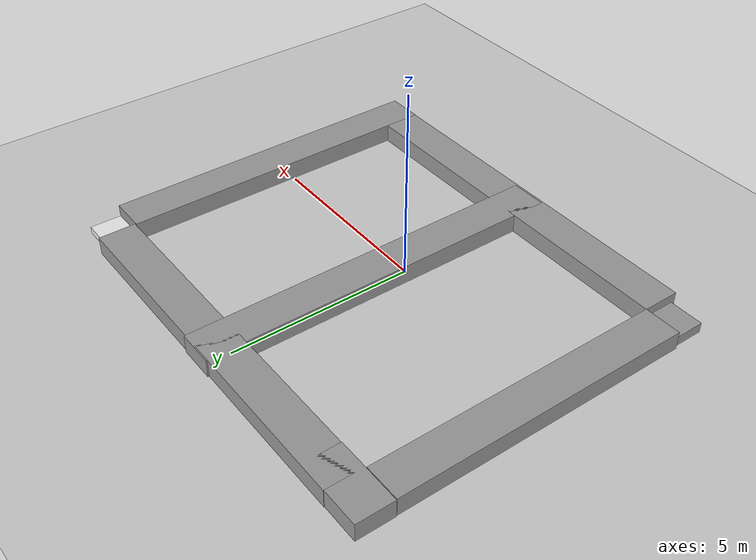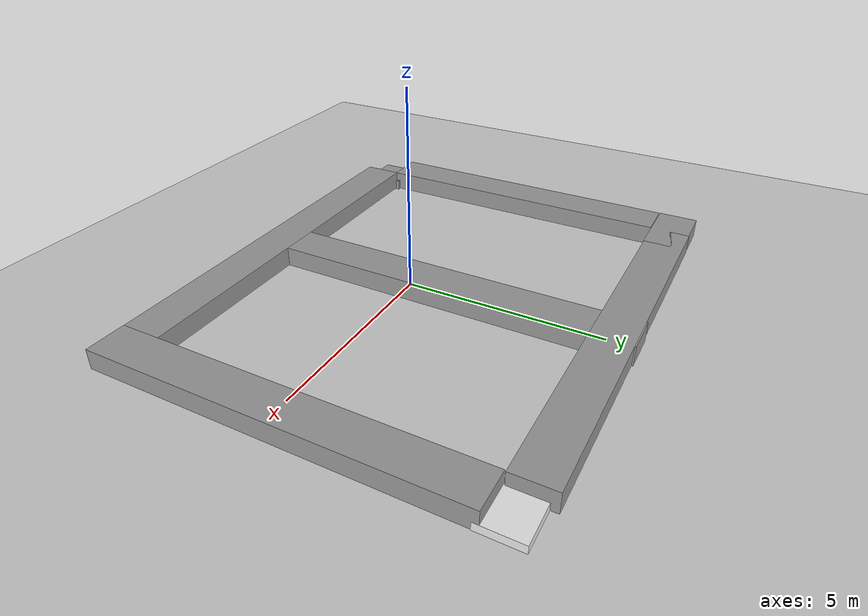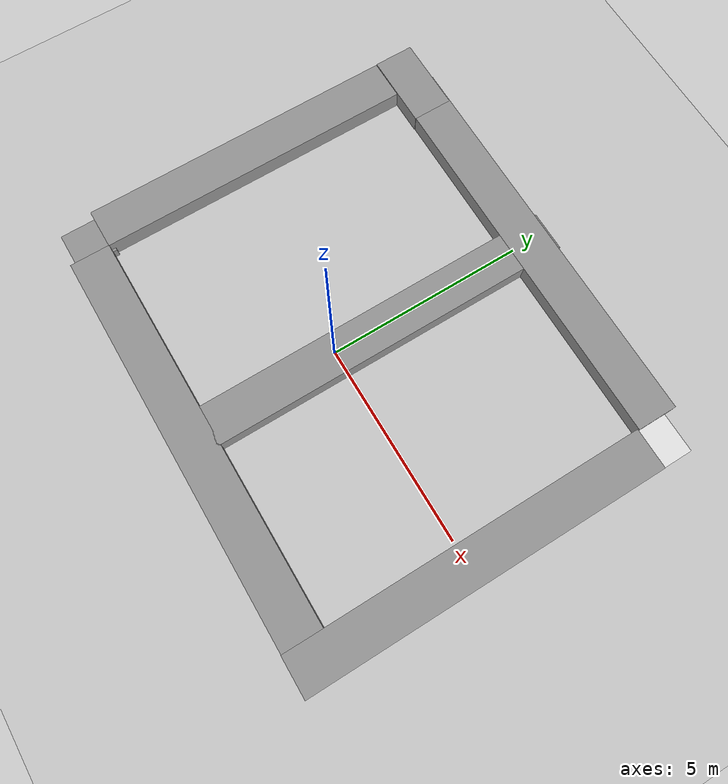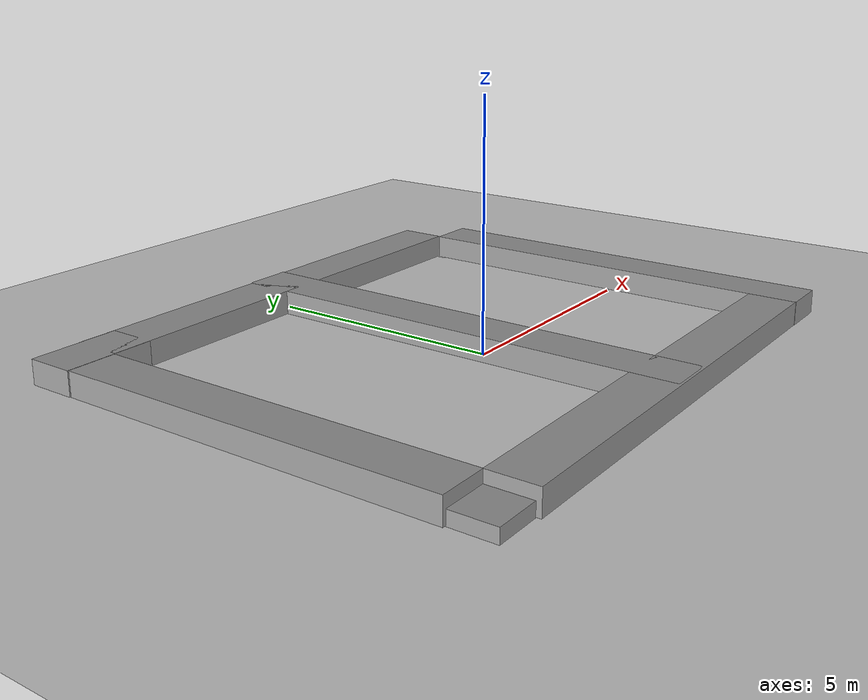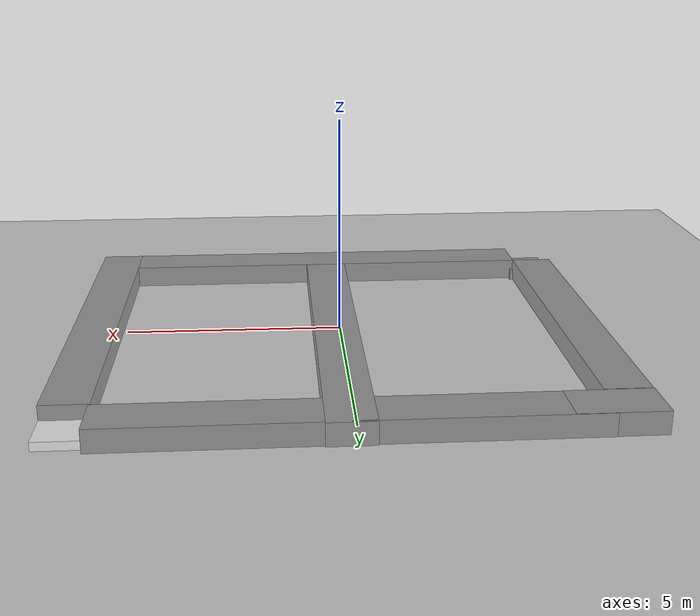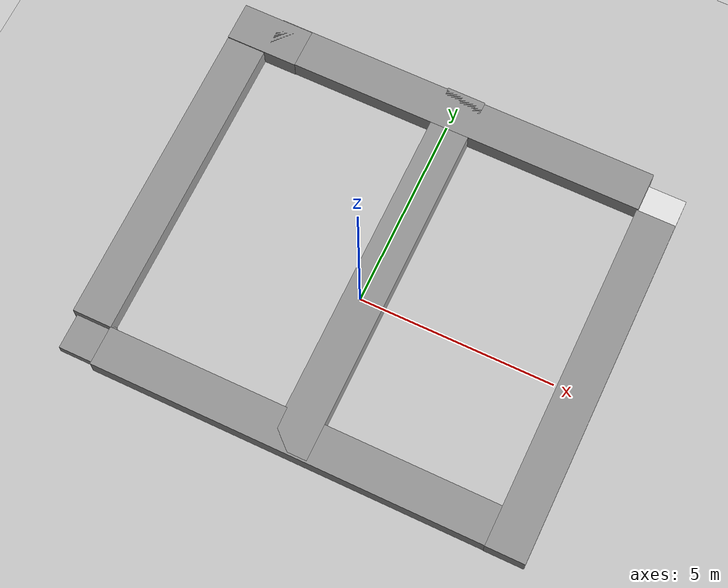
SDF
<sdf version="1.7">
 <world name="default">
  <light name="sun" type="directional">
   <pose>0 0 10 0 -0 0</pose>
   <diffuse>0.8 0.8 0.8 1</diffuse>
   <specular>0.2 0.2 0.2 1</specular>
   <attenuation>
    <range>1000</range>
    <constant>0.9</constant>
    <linear>0.01</linear>
    <quadratic>0.001</quadratic>
   </attenuation>
   <direction>-0.5 0.1 -0.9</direction>
   <spot><inner_angle>0</inner_angle><outer_angle>0</outer_angle><falloff>0</falloff></spot>
  </light>
  <model name="ground_plane">
   <static>1</static>
   <link name="link">
    <collision name="collision">
     <geometry><plane><normal>0 0 1</normal><size>100 100</size></plane></geometry>
     <surface>
      <contact><collide_bitmask>65535</collide_bitmask></contact>
      <friction><ode><mu>100</mu><mu2>50</mu2></ode></friction>
     </surface>
    </collision>
    <visual name="visual">
     <cast_shadows>0</cast_shadows>
     <geometry><plane><normal>0 0 1</normal><size>100 100</size></plane></geometry>
     <material>
      <script><uri>file://media/materials/scripts/gazebo.material</uri><name>Gazebo/Grey</name></script>
     </material>
    </visual>
   </link>
  </model>
  <gravity>0 0 -9.8</gravity>
  <magnetic_field>6e-06 2.3e-05 -4.2e-05</magnetic_field>
  <atmosphere type="adiabatic"/>
  <physics type="ode">
   <max_step_size>0.001</max_step_size>
   <real_time_factor>1</real_time_factor>
   <real_time_update_rate>1000</real_time_update_rate>
  </physics>
  <scene><ambient>0.4 0.4 0.4 1</ambient><background>0.7 0.7 0.7 1</background><shadows>1</shadows></scene>
  <spherical_coordinates>
   <surface_model>EARTH_WGS84</surface_model>
   <latitude_deg>0</latitude_deg>
   <longitude_deg>0</longitude_deg>
   <elevation>0</elevation>
   <heading_deg>0</heading_deg>
  </spherical_coordinates>
  <model name="rescuePath2">
   <pose>0.0957 0.755836 0 0 -0 0</pose>
   <link name="Wall_12">
    <collision name="Wall_12_Collision">
     <geometry><box><size>1.85 1 0.5</size></box></geometry>
     <pose>0 0 0.25 0 -0 0</pose>
    </collision>
    <visual name="Wall_12_Visual">
     <pose>0 0 0.25 0 -0 0</pose>
     <geometry><box><size>1.85 1 0.5</size></box></geometry>
     <material>
      <script><uri>file://media/materials/scripts/gazebo.material</uri><name>Gazebo/Grey</name></script>
      <ambient>1 1 1 1</ambient>
     </material>
     <meta><layer>0</layer></meta>
    </visual>
    <pose>-5.07634 4.48429 0 0 -0 0</pose>
   </link>
   <link name="Wall_14">
    <collision name="Wall_14_Collision">
     <geometry><box><size>9 1 0.5</size></box></geometry>
     <pose>0 0 0.25 0 -0 0</pose>
    </collision>
    <visual name="Wall_14_Visual">
     <pose>0 0 0.25 0 -0 0</pose>
     <geometry><box><size>9 1 0.5</size></box></geometry>
     <material>
      <script><uri>file://media/materials/scripts/gazebo.material</uri><name>Gazebo/Grey</name></script>
      <ambient>1 1 1 1</ambient>
     </material>
     <meta><layer>0</layer></meta>
    </visual>
    <pose>5.50134 -0.530244 0 0 -0 1.5708</pose>
   </link>
   <link name="Wall_2">
    <collision name="Wall_2_Collision">
     <geometry><box><size>10 1 0.5</size></box></geometry>
     <pose>0 0 0.25 0 -0 0</pose>
    </collision>
    <visual name="Wall_2_Visual">
     <pose>0 0 0.25 0 -0 0</pose>
     <geometry><box><size>10 1 0.5</size></box></geometry>
     <material>
      <script><uri>file://media/materials/scripts/gazebo.material</uri><name>Gazebo/Grey</name></script>
      <ambient>1 1 1 1</ambient>
     </material>
     <meta><layer>0</layer></meta>
    </visual>
    <pose>0.03294 4.49558 0 0 -0 0</pose>
   </link>
   <link name="Wall_4">
    <collision name="Wall_4_Collision">
     <geometry><box><size>10 1 0.5</size></box></geometry>
     <pose>0 0 0.25 0 -0 0</pose>
    </collision>
    <visual name="Wall_4_Visual">
     <pose>0 0 0.25 0 -0 0</pose>
     <geometry><box><size>10 1 0.5</size></box></geometry>
     <material>
      <script><uri>file://media/materials/scripts/gazebo.material</uri><name>Gazebo/Grey</name></script>
      <ambient>1 1 1 1</ambient>
     </material>
     <meta><layer>0</layer></meta>
    </visual>
    <pose>0.060104 0.030244 0 0 -0 -1.5708</pose>
   </link>
   <link name="Wall_6">
    <collision name="Wall_6_Collision">
     <geometry><box><size>10 1 0.5</size></box></geometry>
     <pose>0 0 0.25 0 -0 0</pose>
    </collision>
    <visual name="Wall_6_Visual">
     <pose>0 0 0.25 0 -0 0</pose>
     <geometry><box><size>10 1 0.5</size></box></geometry>
     <material>
      <script><uri>file://media/materials/scripts/gazebo.material</uri><name>Gazebo/Grey</name></script>
      <ambient>1 1 1 1</ambient>
     </material>
     <meta><layer>0</layer></meta>
    </visual>
    <pose>0.004006 -4.52136 0 0 -0 0</pose>
   </link>
   <link name="Wall_8">
    <collision name="Wall_8_Collision">
     <geometry><box><size>8 1 0.5</size></box></geometry>
     <pose>0 0 0.25 0 -0 0</pose>
    </collision>
    <visual name="Wall_8_Visual">
     <pose>0 0 0.25 0 -0 0</pose>
     <geometry><box><size>8 1 0.5</size></box></geometry>
     <material>
      <script><uri>file://media/materials/scripts/gazebo.material</uri><name>Gazebo/Grey</name></script>
      <ambient>1 1 1 1</ambient>
     </material>
     <meta><layer>0</layer></meta>
    </visual>
    <pose>-5.4878 -0.030463 0 0 -0 -1.5708</pose>
   </link>
   <static>1</static>
  </model>
  <model name="unit_box_black">
   <link name="link">
    <inertial>
     <mass>1</mass>
     <inertia>
      <ixx>0.166667</ixx>
      <ixy>0</ixy>
      <ixz>0</ixz>
      <iyy>0.166667</iyy>
      <iyz>0</iyz>
      <izz>0.166667</izz>
     </inertia>
    </inertial>
    <visual name="visual">
     <geometry><box><size>1 0.999997 0.514458</size></box></geometry>
     <material>
      <script><name>Gazebo/Grey</name><uri>file://media/materials/scripts/gazebo.material</uri></script>
      <shader type="pixel"/>
     </material>
    </visual>
    <collision name="collision">
     <geometry><box><size>1 0.999997 0.514458</size></box></geometry>
     <surface>
      <friction>
       <ode><mu>1</mu><mu2>1</mu2><fdir1>0 0 0</fdir1><slip1>0</slip1><slip2>0</slip2></ode>
       <torsional>
        <coefficient>1</coefficient>
        <patch_radius>0</patch_radius>
        <surface_radius>0</surface_radius>
        <use_patch_radius>1</use_patch_radius>
        <ode><slip>0</slip></ode>
       </torsional>
      </friction>
      <bounce><restitution_coefficient>0</restitution_coefficient><threshold>1e+06</threshold></bounce>
      <contact>
       <collide_without_contact>0</collide_without_contact>
       <collide_without_contact_bitmask>1</collide_without_contact_bitmask>
       <collide_bitmask>1</collide_bitmask>
       <ode>
        <soft_cfm>0</soft_cfm>
        <soft_erp>0.2</soft_erp>
        <kp>1e+13</kp>
        <kd>1</kd>
        <max_vel>0.01</max_vel>
        <min_depth>0</min_depth>
       </ode>
       <bullet>
        <split_impulse>1</split_impulse>
        <split_impulse_penetration_threshold>-0.01</split_impulse_penetration_threshold>
        <soft_cfm>0</soft_cfm>
        <soft_erp>0.2</soft_erp>
        <kp>1e+13</kp>
        <kd>1</kd>
       </bullet>
      </contact>
     </surface>
    </collision>
   </link>
   <static>1</static>
   <pose>-5.32064 -3.6647 0 0 -0 0</pose>
  </model>
  <model name="unit_box_clone">
   <link name="link">
    <inertial>
     <mass>1</mass>
     <inertia>
      <ixx>0.166667</ixx>
      <ixy>0</ixy>
      <ixz>0</ixz>
      <iyy>0.166667</iyy>
      <iyz>0</iyz>
      <izz>0.166667</izz>
     </inertia>
    </inertial>
    <visual name="visual">
     <geometry><box><size>1 0.999995 0.514459</size></box></geometry>
     <material>
      <script><name>Gazebo/White</name><uri>file://media/materials/scripts/gazebo.material</uri></script>
      <shader type="pixel"><normal_map>__default__</normal_map></shader>
      <ambient>1 1 1 1</ambient>
      <diffuse>1 1 1 1</diffuse>
      <specular>1 1 1 1</specular>
      <emissive>1 1 1 1</emissive>
     </material>
    </visual>
    <collision name="collision">
     <geometry><box><size>1 0.999995 0.514459</size></box></geometry>
     <surface>
      <friction>
       <ode><mu>1</mu><mu2>1</mu2><fdir1>0 0 0</fdir1><slip1>0</slip1><slip2>0</slip2></ode>
       <torsional>
        <coefficient>1</coefficient>
        <patch_radius>0</patch_radius>
        <surface_radius>0</surface_radius>
        <use_patch_radius>1</use_patch_radius>
        <ode><slip>0</slip></ode>
       </torsional>
      </friction>
      <bounce><restitution_coefficient>0</restitution_coefficient><threshold>1e+06</threshold></bounce>
      <contact>
       <collide_without_contact>0</collide_without_contact>
       <collide_without_contact_bitmask>1</collide_without_contact_bitmask>
       <collide_bitmask>1</collide_bitmask>
       <ode>
        <soft_cfm>0</soft_cfm>
        <soft_erp>0.2</soft_erp>
        <kp>1e+13</kp>
        <kd>1</kd>
        <max_vel>0.01</max_vel>
        <min_depth>0</min_depth>
       </ode>
       <bullet>
        <split_impulse>1</split_impulse>
        <split_impulse_penetration_threshold>-0.01</split_impulse_penetration_threshold>
        <soft_cfm>0</soft_cfm>
        <soft_erp>0.2</soft_erp>
        <kp>1e+13</kp>
        <kd>1</kd>
       </bullet>
      </contact>
     </surface>
    </collision>
   </link>
   <static>1</static>
   <pose>5.59794 5.07518 -0.081695 0 -0 0</pose>
  </model>
 </world>
</sdf>
